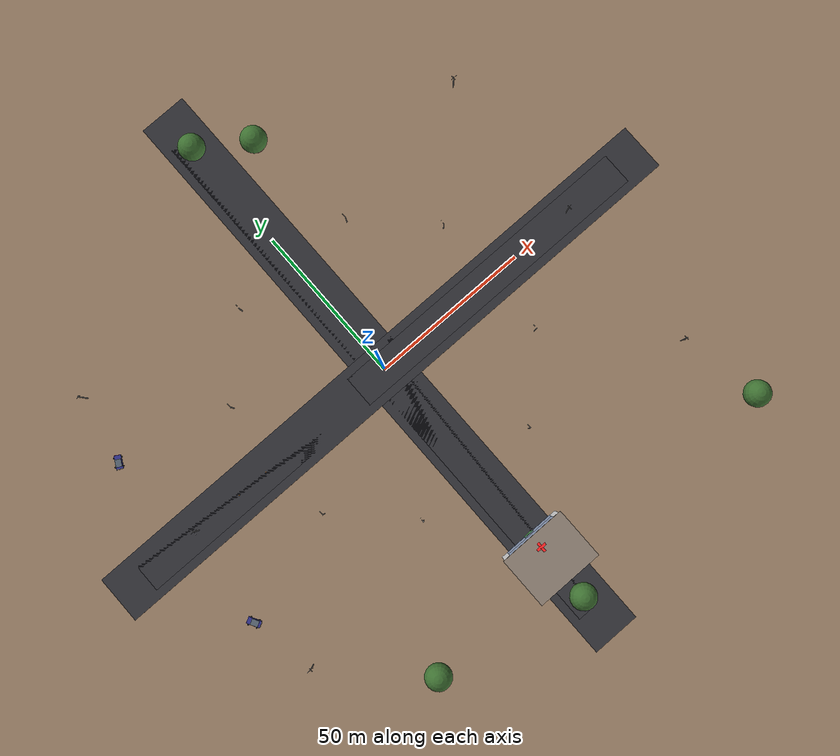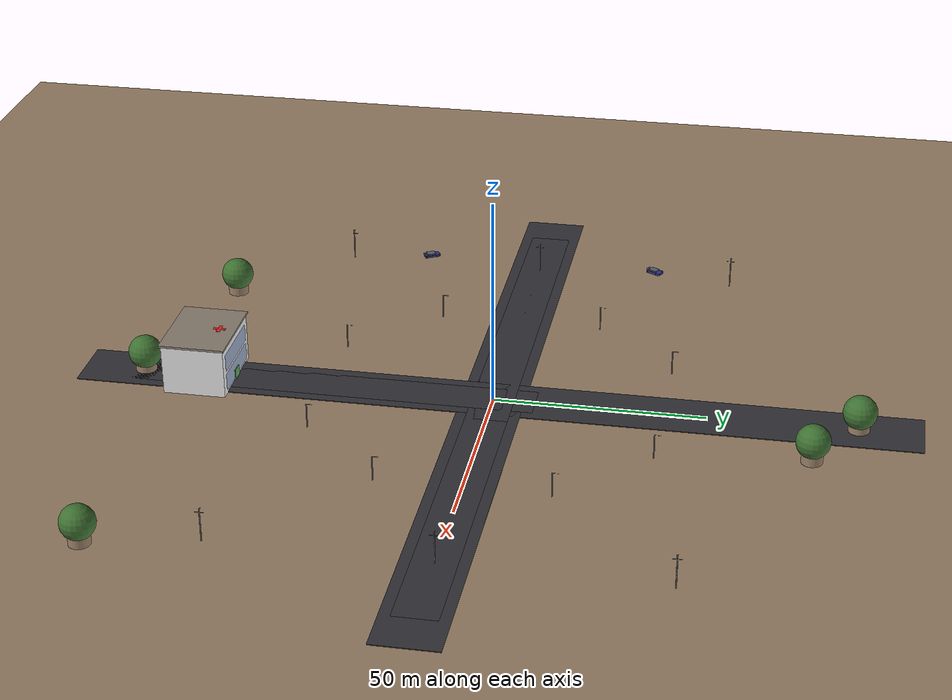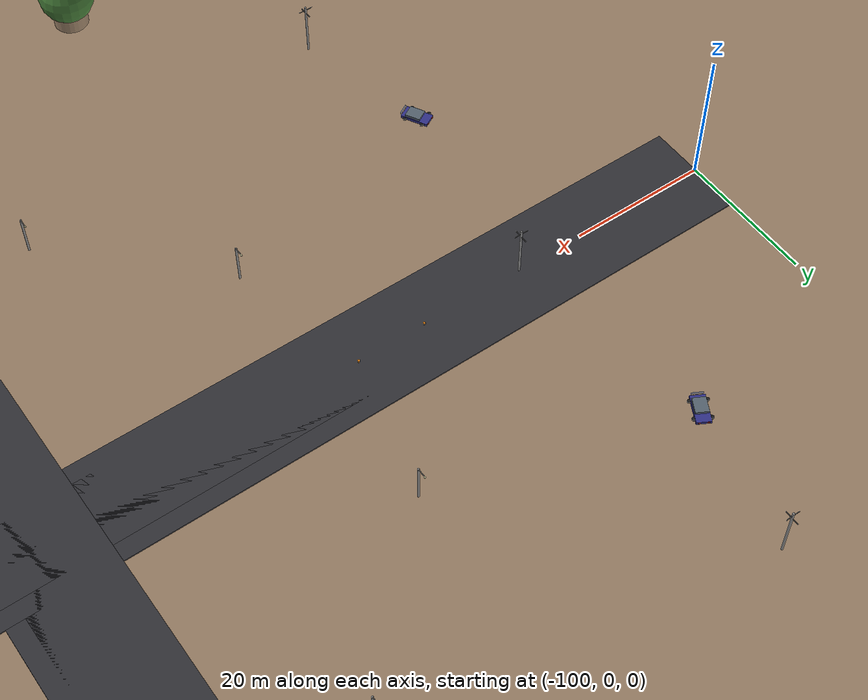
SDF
<sdf version="1.9">
 <world name="dodoma_city">
  <physics type="ode">
   <max_step_size>0.004</max_step_size>
   <real_time_factor>1.0</real_time_factor>
   <real_time_update_rate>250</real_time_update_rate>
   <gravity>0 0 -9.81</gravity>
  </physics>
  <spherical_coordinates>
   <surface_model>EARTH_WGS84</surface_model>
   <world_frame_orientation>ENU</world_frame_orientation>
   <latitude_deg>-6.1629</latitude_deg>
   <longitude_deg>35.7516</longitude_deg>
   <elevation>1120</elevation>
   <heading_deg>0</heading_deg>
  </spherical_coordinates>
  <scene>
   <grid>false</grid>
   <sky><time>12.0</time><clouds><speed>3</speed><humidity>0.4</humidity></clouds></sky>
   <ambient>0.5 0.5 0.5 1</ambient>
   <background>0.45 0.55 0.75 1</background>
   <shadows>true</shadows>
  </scene>
  <light type="directional" name="sun">
   <pose>0 0 100 0 0 0</pose>
   <diffuse>1 0.95 0.9 1</diffuse>
   <direction>-0.3 0.1 -0.95</direction>
  </light>
  <model name="dodoma_ground">
   <static>true</static>
   <link name="ground">
    <collision name="collision">
     <geometry><plane><normal>0 0 1</normal><size>500 500</size></plane></geometry>
    </collision>
    <visual name="soil">
     <geometry><plane><normal>0 0 1</normal><size>500 500</size></plane></geometry>
     <material><ambient>0.55 0.45 0.35 1</ambient><diffuse>0.6 0.5 0.4 1</diffuse></material>
    </visual>
   </link>
  </model>
  <model name="main_ew_road">
   <pose>0 0 0.12 0 0 0</pose>
   <static>true</static>
   <link name="road">
    <collision name="collision"><geometry><box><size>200 15 0.2</size></box></geometry></collision>
    <visual name="tarmac">
     <geometry><box><size>200 15 0.2</size></box></geometry>
     <material><ambient>0.18 0.18 0.2 1</ambient><diffuse>0.2 0.2 0.22 1</diffuse></material>
    </visual>
   </link>
  </model>
  <model name="main_ns_road">
   <pose>0 0 0.12 0 0 0</pose>
   <static>true</static>
   <link name="road">
    <collision name="collision"><geometry><box><size>15 200 0.2</size></box></geometry></collision>
    <visual name="tarmac">
     <geometry><box><size>15 200 0.2</size></box></geometry>
     <material><ambient>0.18 0.18 0.2 1</ambient><diffuse>0.2 0.2 0.22 1</diffuse></material>
    </visual>
   </link>
  </model>
  <model name="secondary_road_1">
   <pose>-40 0 0.12 0 0 0</pose>
   <static>true</static>
   <link name="road">
    <collision name="collision"><geometry><box><size>100 10 0.2</size></box></geometry></collision>
    <visual name="tarmac">
     <geometry><box><size>100 10 0.2</size></box></geometry>
     <material><ambient>0.18 0.18 0.2 1</ambient><diffuse>0.2 0.2 0.22 1</diffuse></material>
    </visual>
   </link>
  </model>
  <model name="secondary_road_2">
   <pose>40 0 0.12 0 0 0</pose>
   <static>true</static>
   <link name="road">
    <collision name="collision"><geometry><box><size>100 10 0.2</size></box></geometry></collision>
    <visual name="tarmac">
     <geometry><box><size>100 10 0.2</size></box></geometry>
     <material><ambient>0.18 0.18 0.2 1</ambient><diffuse>0.2 0.2 0.22 1</diffuse></material>
    </visual>
   </link>
  </model>
  <model name="secondary_road_3">
   <pose>0 -40 0.12 0 0 0</pose>
   <static>true</static>
   <link name="road">
    <collision name="collision"><geometry><box><size>10 100 0.2</size></box></geometry></collision>
    <visual name="tarmac">
     <geometry><box><size>10 100 0.2</size></box></geometry>
     <material><ambient>0.18 0.18 0.2 1</ambient><diffuse>0.2 0.2 0.22 1</diffuse></material>
    </visual>
   </link>
  </model>
  <model name="secondary_road_4">
   <pose>0 40 0.12 0 0 0</pose>
   <static>true</static>
   <link name="road">
    <collision name="collision"><geometry><box><size>10 100 0.2</size></box></geometry></collision>
    <visual name="tarmac">
     <geometry><box><size>10 100 0.2</size></box></geometry>
     <material><ambient>0.18 0.18 0.2 1</ambient><diffuse>0.2 0.2 0.22 1</diffuse></material>
    </visual>
   </link>
  </model>
  <model name="hospital_1">
   <pose>0 -70 0 0 0 0</pose>
   <static>true</static>
   <include><uri>hospital</uri></include>
  </model>
  <model name="tree_north_2">
   <pose>-45 -75 0 0 0 0</pose>
   <static>true</static>
   <include><uri>baobab_tree</uri></include>
  </model>
  <model name="tree_north_6">
   <pose>75 -75 0 0 0 0</pose>
   <static>true</static>
   <include><uri>baobab_tree</uri></include>
  </model>
  <model name="tree_south_4">
   <pose>15 75 0 0 0 0</pose>
   <static>true</static>
   <include><uri>baobab_tree</uri></include>
  </model>
  <model name="tree_roadside_3">
   <pose>0 -85 0 0 0 0</pose>
   <static>true</static>
   <include><uri>baobab_tree</uri></include>
  </model>
  <model name="tree_roadside_4">
   <pose>0 85 0 0 0 0</pose>
   <static>true</static>
   <include><uri>baobab_tree</uri></include>
  </model>
  <model name="lamp_1">
   <pose>-40 -20 0 0 0 0</pose>
   <static>true</static>
   <include><uri>street_lamp</uri></include>
  </model>
  <model name="lamp_2">
   <pose>-40 20 0 0 0 0</pose>
   <static>true</static>
   <include><uri>street_lamp</uri></include>
  </model>
  <model name="lamp_3">
   <pose>40 -20 0 0 0 0</pose>
   <static>true</static>
   <include><uri>street_lamp</uri></include>
  </model>
  <model name="lamp_4">
   <pose>40 20 0 0 0 0</pose>
   <static>true</static>
   <include><uri>street_lamp</uri></include>
  </model>
  <model name="lamp_5">
   <pose>-20 -40 0 0 0 0</pose>
   <static>true</static>
   <include><uri>street_lamp</uri></include>
  </model>
  <model name="lamp_6">
   <pose>-20 40 0 0 0 0</pose>
   <static>true</static>
   <include><uri>street_lamp</uri></include>
  </model>
  <model name="lamp_7">
   <pose>20 -40 0 0 0 0</pose>
   <static>true</static>
   <include><uri>street_lamp</uri></include>
  </model>
  <model name="lamp_8">
   <pose>20 40 0 0 0 0</pose>
   <static>true</static>
   <include><uri>street_lamp</uri></include>
  </model>
  <model name="pole_1">
   <pose>-70 -50 0 0 0 0</pose>
   <static>true</static>
   <include><uri>electrical_pole</uri></include>
  </model>
  <model name="pole_2">
   <pose>-70 0 0 0 0 0</pose>
   <static>true</static>
   <include><uri>electrical_pole</uri></include>
  </model>
  <model name="pole_3">
   <pose>-70 50 0 0 0 0</pose>
   <static>true</static>
   <include><uri>electrical_pole</uri></include>
  </model>
  <model name="pole_4">
   <pose>70 -50 0 0 0 0</pose>
   <static>true</static>
   <include><uri>electrical_pole</uri></include>
  </model>
  <model name="pole_5">
   <pose>70 0 0 0 0 0</pose>
   <static>true</static>
   <include><uri>electrical_pole</uri></include>
  </model>
  <model name="pole_6">
   <pose>70 50 0 0 0 0</pose>
   <static>true</static>
   <include><uri>electrical_pole</uri></include>
  </model>
  <model name="cone_1">
   <pose>-55 0 0 0 0 0</pose>
   <static>true</static>
   <include><uri>traffic_cone</uri></include>
  </model>
  <model name="cone_2">
   <pose>-45 0 0 0 0 0</pose>
   <static>true</static>
   <include><uri>traffic_cone</uri></include>
  </model>
  <model name="cone_3">
   <pose>45 0 0 0 0 0</pose>
   <static>true</static>
   <include><uri>traffic_cone</uri></include>
  </model>
  <model name="cone_4">
   <pose>55 0 0 0 0 0</pose>
   <static>true</static>
   <include><uri>traffic_cone</uri></include>
  </model>
  <model name="car_1">
   <pose>-75 -30 0 0 0 0.5</pose>
   <static>true</static>
   <include><uri>sedan_car</uri></include>
  </model>
  <model name="car_2">
   <pose>-75 30 0 0 0 -0.5</pose>
   <static>true</static>
   <include><uri>sedan_car</uri></include>
  </model>
  <model name="delivery_drone">
   <pose>0 0 25 0 0 0</pose>
   <static>false</static>
   <include><uri>iris_drone</uri></include>
  </model>
 </world>
</sdf>

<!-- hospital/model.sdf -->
<sdf version="1.9">
  <model name="hospital">
    <static>true</static>
    <link name="main">
      <collision name="col">
        <pose>0 0 6 0 0 0</pose>
        <geometry><box><size>20 15 12</size></box></geometry>
      </collision>
      <!-- Main building -->
      <visual name="walls">
        <pose>0 0 6 0 0 0</pose>
        <geometry><box><size>20 15 12</size></box></geometry>
        <material>
          <ambient>0.85 0.85 0.85 1</ambient>
          <diffuse>0.9 0.9 0.9 1</diffuse>
          <specular>0.1 0.1 0.1 1</specular>
        </material>
      </visual>
      <!-- Windows front row 1 -->
      <visual name="w_front_1">
        <pose>0 7.6 8 0 0 0</pose>
        <geometry><box><size>16 0.2 4</size></box></geometry>
        <material>
          <ambient>0.4 0.5 0.7 0.6</ambient>
          <diffuse>0.45 0.55 0.75 0.6</diffuse>
          <specular>0.3 0.3 0.3 1</specular>
        </material>
      </visual>
      <!-- Windows front row 2 -->
      <visual name="w_front_2">
        <pose>0 7.6 3 0 0 0</pose>
        <geometry><box><size>16 0.2 4</size></box></geometry>
        <material>
          <ambient>0.4 0.5 0.7 0.6</ambient>
          <diffuse>0.45 0.55 0.75 0.6</diffuse>
          <specular>0.3 0.3 0.3 1</specular>
        </material>
      </visual>
      <!-- Roof -->
      <visual name="roof">
        <pose>0 0 12.3 0 0 0</pose>
        <geometry><box><size>20.8 15.8 0.5</size></box></geometry>
        <material>
          <ambient>0.5 0.45 0.4 1</ambient>
          <diffuse>0.55 0.5 0.45 1</diffuse>
        </material>
      </visual>
      <!-- Red cross on roof -->
      <visual name="cross_h">
        <pose>0 4 12.8 0 0 0</pose>
        <geometry><box><size>3 0.8 0.1</size></box></geometry>
        <material>
          <ambient>0.9 0.1 0.1 1</ambient>
          <diffuse>1 0.15 0.15 1</diffuse>
          <emissive>0.3 0.05 0.05 1</emissive>
        </material>
      </visual>
      <visual name="cross_v">
        <pose>0 4 12.8 0 0 0</pose>
        <geometry><box><size>0.8 3 0.1</size></box></geometry>
        <material>
          <ambient>0.9 0.1 0.1 1</ambient>
          <diffuse>1 0.15 0.15 1</diffuse>
          <emissive>0.3 0.05 0.05 1</emissive>
        </material>
      </visual>
      <!-- Entrance -->
      <visual name="entrance">
        <pose>0 7.6 1.5 0 0 0</pose>
        <geometry><box><size>3 0.3 2.5</size></box></geometry>
        <material>
          <ambient>0.3 0.6 0.3 1</ambient>
          <diffuse>0.35 0.65 0.35 1</diffuse>
        </material>
      </visual>
    </link>
  </model>
</sdf>

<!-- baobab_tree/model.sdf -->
<sdf version="1.9">
  <model name="baobab_tree">
    <static>true</static>
    <link name="trunk">
      <collision name="trunk_col">
        <geometry><cylinder><radius>2</radius><length>6</length></cylinder></geometry>
      </collision>
      <visual name="trunk_vis">
        <geometry><cylinder><radius>2.5</radius><length>6</length></cylinder></geometry>
        <material>
          <ambient>0.55 0.45 0.35 1</ambient>
          <diffuse>0.6 0.5 0.4 1</diffuse>
          <specular>0.08 0.06 0.04 1</specular>
        </material>
      </visual>
    </link>
    <link name="canopy">
      <pose>0 0 5 0 0 0</pose>
      <collision name="canopy_col">
        <geometry><sphere><radius>3.5</radius></sphere></geometry>
      </collision>
      <visual name="canopy_vis">
        <geometry><sphere><radius>4</radius></sphere></geometry>
        <material>
          <ambient>0.2 0.4 0.15 1</ambient>
          <diffuse>0.25 0.45 0.2 1</diffuse>
          <specular>0.1 0.2 0.05 1</specular>
        </material>
      </visual>
    </link>
  </model>
</sdf>

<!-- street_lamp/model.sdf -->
<sdf version="1.9">
  <model name="street_lamp">
    <static>true</static>
    <link name="main">
      <collision name="col">
        <geometry><cylinder><radius>0.2</radius><length>6</length></cylinder></geometry>
      </collision>
      <!-- Pole -->
      <visual name="pole">
        <pose>0 0 3 0 0 0</pose>
        <geometry><cylinder><radius>0.15</radius><length>6</length></cylinder></geometry>
        <material>
          <ambient>0.5 0.5 0.5 1</ambient>
          <diffuse>0.55 0.55 0.55 1</diffuse>
          <specular>0.4 0.4 0.4 1</specular>
        </material>
      </visual>
      <!-- Arm -->
      <visual name="arm">
        <pose>0 0.6 6 0 0 0</pose>
        <geometry><box><size>0.08 1.2 0.08</size></box></geometry>
        <material>
          <ambient>0.45 0.45 0.45 1</ambient>
          <diffuse>0.5 0.5 0.5 1</diffuse>
          <specular>0.3 0.3 0.3 1</specular>
        </material>
      </visual>
      <!-- Light fixture -->
      <visual name="light_fixture">
        <pose>0 1.3 5.95 0 0 0</pose>
        <geometry><box><size>0.15 0.2 0.15</size></box></geometry>
        <material>
          <ambient>0.9 0.9 0.6 1</ambient>
          <diffuse>1 1 0.8 1</diffuse>
          <emissive>0.5 0.5 0.2 1</emissive>
        </material>
      </visual>
    </link>
  </model>
</sdf>

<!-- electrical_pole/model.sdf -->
<sdf version="1.9">
  <model name="electrical_pole">
    <static>true</static>
    <link name="main">
      <collision name="col">
        <pose>0 0 4 0 0 0</pose>
        <geometry><cylinder><radius>0.15</radius><length>8</length></cylinder></geometry>
      </collision>
      <!-- Pole -->
      <visual name="pole">
        <pose>0 0 4 0 0 0</pose>
        <geometry><cylinder><radius>0.15</radius><length>8</length></cylinder></geometry>
        <material>
          <ambient>0.5 0.5 0.5 1</ambient>
          <diffuse>0.55 0.55 0.55 1</diffuse>
          <specular>0.1 0.1 0.1 1</specular>
        </material>
      </visual>
      <!-- Crossarm 1 (top, along X) -->
      <visual name="crossarm_x">
        <pose>0 0 7.5 0 0 0</pose>
        <geometry><box><size>2 0.08 0.08</size></box></geometry>
        <material>
          <ambient>0.3 0.3 0.3 1</ambient>
          <diffuse>0.35 0.35 0.35 1</diffuse>
        </material>
      </visual>
      <!-- Crossarm 2 (middle, along Y) -->
      <visual name="crossarm_y">
        <pose>0 0 7 0 0 0</pose>
        <geometry><box><size>0.08 2 0.08</size></box></geometry>
        <material>
          <ambient>0.3 0.3 0.3 1</ambient>
          <diffuse>0.35 0.35 0.35 1</diffuse>
        </material>
      </visual>
      <!-- Insulators on crossarm 1 -->
      <visual name="insulator_x1">
        <pose>-1 0 7.55 0 0 0</pose>
        <geometry><cylinder><radius>0.04</radius><length>0.06</length></cylinder></geometry>
        <material><ambient>0.8 0.8 0.8 1</ambient><diffuse>0.85 0.85 0.85 1</diffuse></material>
      </visual>
      <visual name="insulator_x2">
        <pose>1 0 7.55 0 0 0</pose>
        <geometry><cylinder><radius>0.04</radius><length>0.06</length></cylinder></geometry>
        <material><ambient>0.8 0.8 0.8 1</ambient><diffuse>0.85 0.85 0.85 1</diffuse></material>
      </visual>
      <!-- Insulators on crossarm 2 -->
      <visual name="insulator_y1">
        <pose>0 -1 7.05 0 0 0</pose>
        <geometry><cylinder><radius>0.04</radius><length>0.06</length></cylinder></geometry>
        <material><ambient>0.8 0.8 0.8 1</ambient><diffuse>0.85 0.85 0.85 1</diffuse></material>
      </visual>
      <visual name="insulator_y2">
        <pose>0 1 7.05 0 0 0</pose>
        <geometry><cylinder><radius>0.04</radius><length>0.06</length></cylinder></geometry>
        <material><ambient>0.8 0.8 0.8 1</ambient><diffuse>0.85 0.85 0.85 1</diffuse></material>
      </visual>
    </link>
  </model>
</sdf>

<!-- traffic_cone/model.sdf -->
<sdf version="1.9">
  <model name="traffic_cone">
    <static>true</static>
    <link name="main">
      <collision name="col">
        <geometry><box><size>0.4 0.4 0.5</size></box></geometry>
      </collision>
      <visual name="cone_base">
        <pose>0 0 0.06 0 0 0</pose>
        <geometry><box><size>0.4 0.4 0.08</size></box></geometry>
        <material>
          <ambient>0.9 0.5 0.05 1</ambient>
          <diffuse>0.95 0.55 0.1 1</diffuse>
          <specular>0.15 0.08 0.02 1</specular>
        </material>
      </visual>
      <visual name="cone_body">
        <pose>0 0 0.3 0 0 0</pose>
        <geometry><cylinder><radius>0.15</radius><length>0.4</length></cylinder></geometry>
        <material>
          <ambient>0.9 0.5 0.05 1</ambient>
          <diffuse>0.95 0.55 0.1 1</diffuse>
          <specular>0.1 0.05 0.01 1</specular>
        </material>
      </visual>
      <!-- White reflective band -->
      <visual name="reflective_band">
        <pose>0 0 0.3 0 0 0</pose>
        <geometry><cylinder><radius>0.16</radius><length>0.08</length></cylinder></geometry>
        <material>
          <ambient>0.85 0.85 0.85 1</ambient>
          <diffuse>0.9 0.9 0.9 1</diffuse>
          <emissive>0.1 0.1 0.1 1</emissive>
        </material>
      </visual>
    </link>
  </model>
</sdf>

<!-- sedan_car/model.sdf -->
<sdf version="1.9">
  <model name="sedan_car">
    <static>true</static>
    <link name="body">
      <collision name="col">
        <geometry><box><size>2 4 0.6</size></box></geometry>
      </collision>
      <!-- Main body -->
      <visual name="body_vis">
        <geometry><box><size>2 4 0.6</size></box></geometry>
        <material>
          <ambient>0.15 0.15 0.5 1</ambient>
          <diffuse>0.2 0.2 0.55 1</diffuse>
          <specular>0.5 0.5 0.5 1</specular>
        </material>
      </visual>
      <!-- Cabin/roof -->
      <visual name="cabin">
        <pose>0 -0.3 0.5 0 0 0</pose>
        <geometry><box><size>1.8 2.2 0.35</size></box></geometry>
        <material>
          <ambient>0.3 0.35 0.4 1</ambient>
          <diffuse>0.35 0.4 0.45 1</diffuse>
          <specular>0.4 0.4 0.4 1</specular>
        </material>
      </visual>
      <!-- Windows -->
      <visual name="windshield">
        <pose>0 -2.15 0.5 0 0 0</pose>
        <geometry><box><size>1.6 0.08 0.3</size></box></geometry>
        <material>
          <ambient>0.4 0.5 0.7 0.6</ambient>
          <diffuse>0.45 0.55 0.75 0.6</diffuse>
          <specular>0.5 0.5 0.5 1</specular>
        </material>
      </visual>
      <!-- 4 wheels -->
      <visual name="wheel_fl">
        <pose>-1.15 1.3 0.12 0 0 0</pose>
        <geometry><cylinder><radius>0.25</radius><length>0.2</length></cylinder></geometry>
        <material>
          <ambient>0.08 0.08 0.08 1</ambient>
          <diffuse>0.12 0.12 0.12 1</diffuse>
          <specular>0.05 0.05 0.05 1</specular>
        </material>
      </visual>
      <visual name="wheel_fr">
        <pose>1.15 1.3 0.12 0 0 0</pose>
        <geometry><cylinder><radius>0.25</radius><length>0.2</length></cylinder></geometry>
        <material>
          <ambient>0.08 0.08 0.08 1</ambient>
          <diffuse>0.12 0.12 0.12 1</diffuse>
          <specular>0.05 0.05 0.05 1</specular>
        </material>
      </visual>
      <visual name="wheel_rl">
        <pose>-1.15 -1.3 0.12 0 0 0</pose>
        <geometry><cylinder><radius>0.25</radius><length>0.2</length></cylinder></geometry>
        <material>
          <ambient>0.08 0.08 0.08 1</ambient>
          <diffuse>0.12 0.12 0.12 1</diffuse>
          <specular>0.05 0.05 0.05 1</specular>
        </material>
      </visual>
      <visual name="wheel_rr">
        <pose>1.15 -1.3 0.12 0 0 0</pose>
        <geometry><cylinder><radius>0.25</radius><length>0.2</length></cylinder></geometry>
        <material>
          <ambient>0.08 0.08 0.08 1</ambient>
          <diffuse>0.12 0.12 0.12 1</diffuse>
          <specular>0.05 0.05 0.05 1</specular>
        </material>
      </visual>
      <!-- Headlights -->
      <visual name="headlight_l">
        <pose>-0.6 -2.05 0.15 0 0 0</pose>
        <geometry><box><size>0.3 0.1 0.12</size></box></geometry>
        <material>
          <ambient>1 0.9 0.6 1</ambient>
          <diffuse>1 0.95 0.7 1</diffuse>
          <emissive>0.3 0.25 0.1 1</emissive>
        </material>
      </visual>
      <visual name="headlight_r">
        <pose>0.6 -2.05 0.15 0 0 0</pose>
        <geometry><box><size>0.3 0.1 0.12</size></box></geometry>
        <material>
          <ambient>1 0.9 0.6 1</ambient>
          <diffuse>1 0.95 0.7 1</diffuse>
          <emissive>0.3 0.25 0.1 1</emissive>
        </material>
      </visual>
      <!-- Tail lights -->
      <visual name="taillight_l">
        <pose>-0.6 2.05 0.15 0 0 0</pose>
        <geometry><box><size>0.3 0.1 0.1</size></box></geometry>
        <material>
          <ambient>0.6 0.1 0.1 1</ambient>
          <diffuse>0.7 0.15 0.15 1</diffuse>
          <emissive>0.2 0.05 0.05 1</emissive>
        </material>
      </visual>
      <visual name="taillight_r">
        <pose>0.6 2.05 0.15 0 0 0</pose>
        <geometry><box><size>0.3 0.1 0.1</size></box></geometry>
        <material>
          <ambient>0.6 0.1 0.1 1</ambient>
          <diffuse>0.7 0.15 0.15 1</diffuse>
          <emissive>0.2 0.05 0.05 1</emissive>
        </material>
      </visual>
    </link>
  </model>
</sdf>

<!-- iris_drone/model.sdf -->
<sdf version="1.9">
  <model name="iris_drone">
    <static>false</static>

    <!-- Main Body/Fuselage -->
    <link name="base_link">
      <pose>0 0 0.05 0 0 0</pose>
      <inertial>
        <mass>1.5</mass>
        <inertia>
          <ixx>0.021</ixx>
          <iyy>0.021</iyy>
          <izz>0.038</izz>
          <ixy>0.0</ixy>
          <ixz>0.0</ixz>
          <iyz>0.0</iyz>
        </inertia>
      </inertial>

      <!-- Main fuselage body -->
      <visual name="fuselage">
        <geometry>
          <box>
            <size>0.33 0.33 0.12</size>
          </box>
        </geometry>
        <material>
          <ambient>0.25 0.25 0.25 1</ambient>
          <diffuse>0.35 0.35 0.35 1</diffuse>
          <specular>0.5 0.5 0.5 1</specular>
        </material>
      </visual>

      <!-- Main fuselage collision -->
      <collision name="fuselage_collision">
        <geometry>
          <box>
            <size>0.33 0.33 0.12</size>
          </box>
        </geometry>
      </collision>

      <!-- Front left arm (pitch/roll control) -->
      <visual name="arm_fl">
        <pose>0.165 0.165 0 0 0 0.785</pose>
        <geometry>
          <box>
            <size>0.35 0.06 0.025</size>
          </box>
        </geometry>
        <material>
          <ambient>0.15 0.15 0.15 1</ambient>
          <diffuse>0.25 0.25 0.25 1</diffuse>
        </material>
      </visual>

      <!-- Front right arm -->
      <visual name="arm_fr">
        <pose>0.165 -0.165 0 0 0 -0.785</pose>
        <geometry>
          <box>
            <size>0.35 0.06 0.025</size>
          </box>
        </geometry>
        <material>
          <ambient>0.15 0.15 0.15 1</ambient>
          <diffuse>0.25 0.25 0.25 1</diffuse>
        </material>
      </visual>

      <!-- Back left arm -->
      <visual name="arm_bl">
        <pose>-0.165 0.165 0 0 0 -0.785</pose>
        <geometry>
          <box>
            <size>0.35 0.06 0.025</size>
          </box>
        </geometry>
        <material>
          <ambient>0.15 0.15 0.15 1</ambient>
          <diffuse>0.25 0.25 0.25 1</diffuse>
        </material>
      </visual>

      <!-- Back right arm -->
      <visual name="arm_br">
        <pose>-0.165 -0.165 0 0 0 0.785</pose>
        <geometry>
          <box>
            <size>0.35 0.06 0.025</size>
          </box>
        </geometry>
        <material>
          <ambient>0.15 0.15 0.15 1</ambient>
          <diffuse>0.25 0.25 0.25 1</diffuse>
        </material>
      </visual>

      <!-- ============ ROTORS (4x BLDC Motors) ============ -->
      <!-- Front left motor & propeller -->
      <visual name="motor_fl">
        <pose>0.33 0.33 0.02 0 0 0</pose>
        <geometry>
          <cylinder>
            <radius>0.03</radius>
            <length>0.025</length>
          </cylinder>
        </geometry>
        <material>
          <ambient>0.1 0.1 0.1 1</ambient>
          <diffuse>0.15 0.15 0.15 1</diffuse>
        </material>
      </visual>

      <visual name="prop_fl">
        <pose>0.33 0.33 0.035 0 0 0</pose>
        <geometry>
          <cylinder>
            <radius>0.125</radius>
            <length>0.01</length>
          </cylinder>
        </geometry>
        <material>
          <ambient>0.85 0.2 0.2 0.8</ambient>
          <diffuse>0.95 0.3 0.3 0.8</diffuse>
        </material>
      </visual>

      <!-- Front right motor & propeller -->
      <visual name="motor_fr">
        <pose>0.33 -0.33 0.02 0 0 0</pose>
        <geometry>
          <cylinder>
            <radius>0.03</radius>
            <length>0.025</length>
          </cylinder>
        </geometry>
        <material>
          <ambient>0.1 0.1 0.1 1</ambient>
          <diffuse>0.15 0.15 0.15 1</diffuse>
        </material>
      </visual>

      <visual name="prop_fr">
        <pose>0.33 -0.33 0.035 0 0 0</pose>
        <geometry>
          <cylinder>
            <radius>0.125</radius>
            <length>0.01</length>
          </cylinder>
        </geometry>
        <material>
          <ambient>0.2 0.8 0.2 0.8</ambient>
          <diffuse>0.3 0.95 0.3 0.8</diffuse>
        </material>
      </visual>

      <!-- Back left motor & propeller -->
      <visual name="motor_bl">
        <pose>-0.33 0.33 0.02 0 0 0</pose>
        <geometry>
          <cylinder>
            <radius>0.03</radius>
            <length>0.025</length>
          </cylinder>
        </geometry>
        <material>
          <ambient>0.1 0.1 0.1 1</ambient>
          <diffuse>0.15 0.15 0.15 1</diffuse>
        </material>
      </visual>

      <visual name="prop_bl">
        <pose>-0.33 0.33 0.035 0 0 0</pose>
        <geometry>
          <cylinder>
            <radius>0.125</radius>
            <length>0.01</length>
          </cylinder>
        </geometry>
        <material>
          <ambient>0.85 0.2 0.2 0.8</ambient>
          <diffuse>0.95 0.3 0.3 0.8</diffuse>
        </material>
      </visual>

      <!-- Back right motor & propeller -->
      <visual name="motor_br">
        <pose>-0.33 -0.33 0.02 0 0 0</pose>
        <geometry>
          <cylinder>
            <radius>0.03</radius>
            <length>0.025</length>
          </cylinder>
        </geometry>
        <material>
          <ambient>0.1 0.1 0.1 1</ambient>
          <diffuse>0.15 0.15 0.15 1</diffuse>
        </material>
      </visual>

      <visual name="prop_br">
        <pose>-0.33 -0.33 0.035 0 0 0</pose>
        <geometry>
          <cylinder>
            <radius>0.125</radius>
            <length>0.01</length>
          </cylinder>
        </geometry>
        <material>
          <ambient>0.2 0.8 0.2 0.8</ambient>
          <diffuse>0.3 0.95 0.3 0.8</diffuse>
        </material>
      </visual>

      <!-- ============ SENSORS ============ -->
      <!-- Camera/Gimbal (front-facing, downward-tilted) -->
      <visual name="camera_unit">
        <pose>0 0 -0.08 0 0.3 0</pose>
        <geometry>
          <box>
            <size>0.06 0.06 0.04</size>
          </box>
        </geometry>
        <material>
          <ambient>0.1 0.1 0.1 1</ambient>
          <diffuse>0.15 0.15 0.15 1</diffuse>
        </material>
      </visual>

      <!-- IMU (Inertial Measurement Unit) -->
      <visual name="imu_unit">
        <pose>0 0 0.01 0 0 0</pose>
        <geometry>
          <box>
            <size>0.02 0.02 0.02</size>
          </box>
        </geometry>
        <material>
          <ambient>0.2 0.2 0.8 1</ambient>
          <diffuse>0.3 0.3 0.9 1</diffuse>
        </material>
      </visual>

      <!-- GPS/GNSS antenna -->
      <visual name="gps_antenna">
        <pose>0.12 0 0.07 0 0 0</pose>
        <geometry>
          <box>
            <size>0.02 0.02 0.05</size>
          </box>
        </geometry>
        <material>
          <ambient>0.8 0.8 0.2 1</ambient>
          <diffuse>0.9 0.9 0.3 1</diffuse>
        </material>
      </visual>

      <!-- Barometer/Altimeter sensor -->
      <visual name="barometer">
        <pose>-0.12 0 0.05 0 0 0</pose>
        <geometry>
          <box>
            <size>0.015 0.015 0.015</size>
          </box>
        </geometry>
        <material>
          <ambient>0.2 0.6 0.8 1</ambient>
          <diffuse>0.3 0.7 0.9 1</diffuse>
        </material>
      </visual>

      <!-- ============ STATUS LIGHTS ============ -->
      <!-- Front LED (Red - indicator) -->
      <visual name="led_front">
        <pose>0.165 0 0.08 0 0 0</pose>
        <geometry>
          <sphere>
            <radius>0.008</radius>
          </sphere>
        </geometry>
        <material>
          <ambient>1 0 0 1</ambient>
          <diffuse>1 0 0 1</diffuse>
          <emissive>1 0 0 0.8</emissive>
        </material>
      </visual>

      <!-- Back LED (Green - indicator) -->
      <visual name="led_back">
        <pose>-0.165 0 0.08 0 0 0</pose>
        <geometry>
          <sphere>
            <radius>0.008</radius>
          </sphere>
        </geometry>
        <material>
          <ambient>0 1 0 1</ambient>
          <diffuse>0 1 0 1</diffuse>
          <emissive>0 1 0 0.8</emissive>
        </material>
      </visual>

      <!-- Battery indicator (Blue) -->
      <visual name="battery_indicator">
        <pose>0 0.165 0.08 0 0 0</pose>
        <geometry>
          <sphere>
            <radius>0.008</radius>
          </sphere>
        </geometry>
        <material>
          <ambient>0 0.5 1 1</ambient>
          <diffuse>0 0.7 1 1</diffuse>
          <emissive>0 0.7 1 0.8</emissive>
        </material>
      </visual>

      <!-- ============ BATTERY COMPARTMENT ============ -->
      <visual name="battery_pack">
        <pose>0 -0.12 -0.02 0 0 0</pose>
        <geometry>
          <box>
            <size>0.15 0.08 0.04</size>
          </box>
        </geometry>
        <material>
          <ambient>0.3 0.3 0.3 1</ambient>
          <diffuse>0.4 0.4 0.4 1</diffuse>
        </material>
      </visual>

      <!-- Landing gear (optional, minimal) -->
      <visual name="landing_gear">
        <pose>0.1 0.1 -0.06 0 0 0</pose>
        <geometry>
          <cylinder>
            <radius>0.01</radius>
            <length>0.06</length>
          </cylinder>
        </geometry>
        <material>
          <ambient>0.15 0.15 0.15 1</ambient>
          <diffuse>0.2 0.2 0.2 1</diffuse>
        </material>
      </visual>

      <visual name="landing_gear_2">
        <pose>-0.1 -0.1 -0.06 0 0 0</pose>
        <geometry>
          <cylinder>
            <radius>0.01</radius>
            <length>0.06</length>
          </cylinder>
        </geometry>
        <material>
          <ambient>0.15 0.15 0.15 1</ambient>
          <diffuse>0.2 0.2 0.2 1</diffuse>
        </material>
      </visual>
    </link>

    <!-- ============ FLIGHT CONTROL SYSTEM ============ -->
    <!-- Multicopter Plugin for Physics-based Flight -->
    <plugin filename="gz-sim-multicopter-motor-model-system" name="gz::sim::systems::MulticopterMotorModel">
      <robotNamespace></robotNamespace>
      <jointName>rotor_0_joint</jointName>
      <linkName>rotor_0</linkName>
      <turningDirection>ccw</turningDirection>
      <timeConstantUp>0.0125</timeConstantUp>
      <timeConstantDown>0.025</timeConstantDown>
      <maxRotVelocity>838</maxRotVelocity>
      <motorConstant>8.54858e-06</motorConstant>
      <momentConstant>0.016</momentConstant>
      <commandSubTopic>gazebo/command/motor_speed</commandSubTopic>
      <motorNumber>0</motorNumber>
      <controlJointName>rotor_0_joint</controlJointName>
      <motorSpeedPubTopic>motor_speed</motorSpeedPubTopic>
    </plugin>

    <plugin filename="gz-sim-multicopter-motor-model-system" name="gz::sim::systems::MulticopterMotorModel">
      <robotNamespace></robotNamespace>
      <jointName>rotor_1_joint</jointName>
      <linkName>rotor_1</linkName>
      <turningDirection>cw</turningDirection>
      <timeConstantUp>0.0125</timeConstantUp>
      <timeConstantDown>0.025</timeConstantDown>
      <maxRotVelocity>838</maxRotVelocity>
      <motorConstant>8.54858e-06</motorConstant>
      <momentConstant>0.016</momentConstant>
      <commandSubTopic>gazebo/command/motor_speed</commandSubTopic>
      <motorNumber>1</motorNumber>
      <controlJointName>rotor_1_joint</controlJointName>
      <motorSpeedPubTopic>motor_speed</motorSpeedPubTopic>
    </plugin>

    <plugin filename="gz-sim-multicopter-motor-model-system" name="gz::sim::systems::MulticopterMotorModel">
      <robotNamespace></robotNamespace>
      <jointName>rotor_2_joint</jointName>
      <linkName>rotor_2</linkName>
      <turningDirection>ccw</turningDirection>
      <timeConstantUp>0.0125</timeConstantUp>
      <timeConstantDown>0.025</timeConstantDown>
      <maxRotVelocity>838</maxRotVelocity>
      <motorConstant>8.54858e-06</motorConstant>
      <momentConstant>0.016</momentConstant>
      <commandSubTopic>gazebo/command/motor_speed</commandSubTopic>
      <motorNumber>2</motorNumber>
      <controlJointName>rotor_2_joint</controlJointName>
      <motorSpeedPubTopic>motor_speed</motorSpeedPubTopic>
    </plugin>

    <plugin filename="gz-sim-multicopter-motor-model-system" name="gz::sim::systems::MulticopterMotorModel">
      <robotNamespace></robotNamespace>
      <jointName>rotor_3_joint</jointName>
      <linkName>rotor_3</linkName>
      <turningDirection>cw</turningDirection>
      <timeConstantUp>0.0125</timeConstantUp>
      <timeConstantDown>0.025</timeConstantDown>
      <maxRotVelocity>838</maxRotVelocity>
      <motorConstant>8.54858e-06</motorConstant>
      <momentConstant>0.016</momentConstant>
      <commandSubTopic>gazebo/command/motor_speed</commandSubTopic>
      <motorNumber>3</motorNumber>
      <controlJointName>rotor_3_joint</controlJointName>
      <motorSpeedPubTopic>motor_speed</motorSpeedPubTopic>
    </plugin>
  </model>
</sdf>
